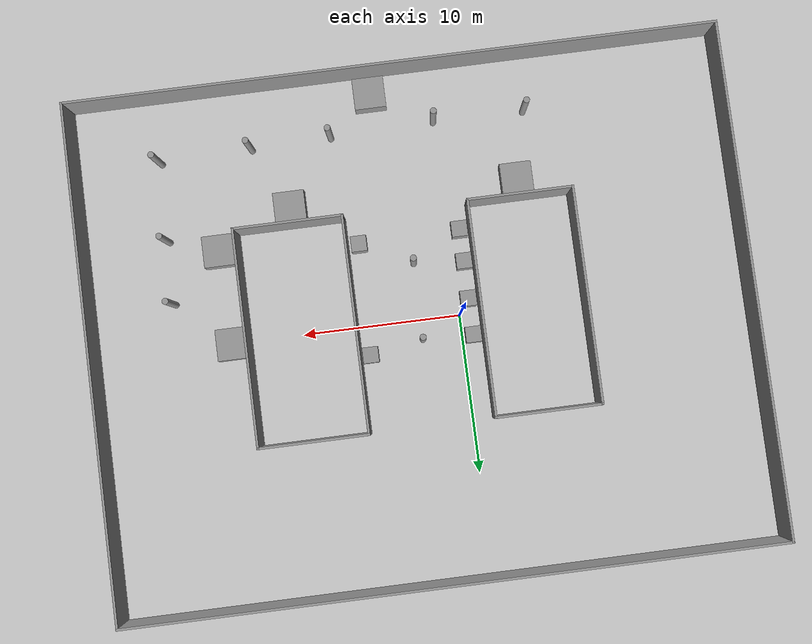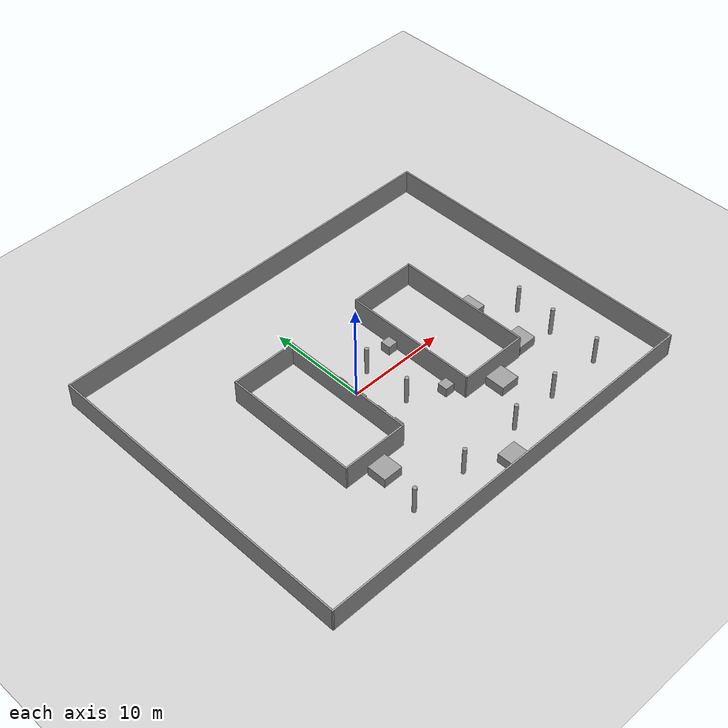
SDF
<sdf version="1.6">
 <world name="default">
  <model name="ground_plane">
   <static>1</static>
   <link name="link">
    <collision name="collision">
     <geometry><plane><normal>0 0 1</normal><size>100 100</size></plane></geometry>
     <surface><friction><ode><mu>100</mu><mu2>50</mu2></ode></friction></surface>
    </collision>
    <visual name="visual">
     <cast_shadows>0</cast_shadows>
     <geometry><plane><normal>0 0 1</normal><size>100 100</size></plane></geometry>
     <material>
      <script><uri>file://media/materials/scripts/gazebo.material</uri><name>Gazebo/Grey</name></script>
     </material>
    </visual>
   </link>
  </model>
  <model name="factoy">
   <pose>2.41999 0.117964 0 0 -0 0</pose>
   <link name="Wall_10">
    <collision name="Wall_10_Collision">
     <geometry><box><size>13.75 0.15 2.5</size></box></geometry>
     <pose>0 0 1.25 0 -0 0</pose>
    </collision>
    <visual name="Wall_10_Visual">
     <pose>0 0 1.25 0 -0 0</pose>
     <geometry><box><size>13.75 0.15 2.5</size></box></geometry>
     <material>
      <script><uri>file://media/materials/scripts/gazebo.material</uri><name>Gazebo/Grey</name></script>
      <ambient>1 1 1 1</ambient>
     </material>
     <meta><layer>0</layer></meta>
    </visual>
    <pose>-10.3431 -0.269014 0 0 -0 1.5708</pose>
   </link>
   <link name="Wall_12">
    <collision name="Wall_12_Collision">
     <geometry><box><size>6.75 0.15 2.5</size></box></geometry>
     <pose>0 0 1.25 0 -0 0</pose>
    </collision>
    <visual name="Wall_12_Visual">
     <pose>0 0 1.25 0 -0 0</pose>
     <geometry><box><size>6.75 0.15 2.5</size></box></geometry>
     <material>
      <script><uri>file://media/materials/scripts/gazebo.material</uri><name>Gazebo/Grey</name></script>
      <ambient>1 1 1 1</ambient>
     </material>
     <meta><layer>0</layer></meta>
    </visual>
    <pose>-7.04306 6.53099 0 0 -0 0</pose>
   </link>
   <link name="Wall_13">
    <collision name="Wall_13_Collision">
     <geometry><box><size>13.75 0.15 2.5</size></box></geometry>
     <pose>0 0 1.25 0 -0 0</pose>
    </collision>
    <visual name="Wall_13_Visual">
     <pose>0 0 1.25 0 -0 0</pose>
     <geometry><box><size>13.75 0.15 2.5</size></box></geometry>
     <material>
      <script><uri>file://media/materials/scripts/gazebo.material</uri><name>Gazebo/Grey</name></script>
      <ambient>1 1 1 1</ambient>
     </material>
     <meta><layer>0</layer></meta>
    </visual>
    <pose>-3.74306 -0.269014 0 0 -0 -1.5708</pose>
   </link>
   <link name="Wall_14">
    <collision name="Wall_14_Collision">
     <geometry><box><size>6.75 0.15 2.5</size></box></geometry>
     <pose>0 0 1.25 0 -0 0</pose>
    </collision>
    <visual name="Wall_14_Visual">
     <pose>0 0 1.25 0 -0 0</pose>
     <geometry><box><size>6.75 0.15 2.5</size></box></geometry>
     <material>
      <script><uri>file://media/materials/scripts/gazebo.material</uri><name>Gazebo/Grey</name></script>
      <ambient>1 1 1 1</ambient>
     </material>
     <meta><layer>0</layer></meta>
    </visual>
    <pose>-7.04306 -7.06901 0 0 -0 3.14159</pose>
   </link>
   <link name="Wall_16">
    <collision name="Wall_16_Collision">
     <geometry><box><size>7 0.15 2.5</size></box></geometry>
     <pose>0 0 1.25 0 -0 0</pose>
    </collision>
    <visual name="Wall_16_Visual">
     <pose>0 0 1.25 0 -0 0</pose>
     <geometry><box><size>7 0.15 2.5</size></box></geometry>
     <material>
      <script><uri>file://media/materials/scripts/gazebo.material</uri><name>Gazebo/Grey</name></script>
      <ambient>1 1 1 1</ambient>
     </material>
     <meta><layer>0</layer></meta>
    </visual>
    <pose>7.54301 -7.09389 0 0 -0 3.14159</pose>
   </link>
   <link name="Wall_17">
    <collision name="Wall_17_Collision">
     <geometry><box><size>13.7872 0.15 2.5</size></box></geometry>
     <pose>0 0 1.25 0 -0 0</pose>
    </collision>
    <visual name="Wall_17_Visual">
     <pose>0 0 1.25 0 -0 0</pose>
     <geometry><box><size>13.7872 0.15 2.5</size></box></geometry>
     <material>
      <script><uri>file://media/materials/scripts/gazebo.material</uri><name>Gazebo/Grey</name></script>
      <ambient>1 1 1 1</ambient>
     </material>
     <meta><layer>0</layer></meta>
    </visual>
    <pose>4.11801 -0.248686 0 0 -0 1.5708</pose>
   </link>
   <link name="Wall_18">
    <collision name="Wall_18_Collision">
     <geometry><box><size>7 0.15 2.5</size></box></geometry>
     <pose>0 0 1.25 0 -0 0</pose>
    </collision>
    <visual name="Wall_18_Visual">
     <pose>0 0 1.25 0 -0 0</pose>
     <geometry><box><size>7 0.15 2.5</size></box></geometry>
     <material>
      <script><uri>file://media/materials/scripts/gazebo.material</uri><name>Gazebo/Grey</name></script>
      <ambient>1 1 1 1</ambient>
     </material>
     <meta><layer>0</layer></meta>
    </visual>
    <pose>7.54301 6.56991 0 0 -0 0</pose>
   </link>
   <link name="Wall_2">
    <collision name="Wall_2_Collision">
     <geometry><box><size>41.5 0.15 2.5</size></box></geometry>
     <pose>0 0 1.25 0 -0 0</pose>
    </collision>
    <visual name="Wall_2_Visual">
     <pose>0 0 1.25 0 -0 0</pose>
     <geometry><box><size>41.5 0.15 2.5</size></box></geometry>
     <material>
      <script><uri>file://media/materials/scripts/gazebo.material</uri><name>Gazebo/Grey</name></script>
      <ambient>1 1 1 1</ambient>
     </material>
     <meta><layer>0</layer></meta>
    </visual>
    <pose>-0 16.3 0 0 -0 0</pose>
   </link>
   <link name="Wall_3">
    <collision name="Wall_3_Collision">
     <geometry><box><size>32.751 0.15 2.5</size></box></geometry>
     <pose>0 0 1.25 0 -0 0</pose>
    </collision>
    <visual name="Wall_3_Visual">
     <pose>0 0 1.25 0 -0 0</pose>
     <geometry><box><size>32.751 0.15 2.5</size></box></geometry>
     <material>
      <script><uri>file://media/materials/scripts/gazebo.material</uri><name>Gazebo/Grey</name></script>
      <ambient>1 1 1 1</ambient>
     </material>
     <meta><layer>0</layer></meta>
    </visual>
    <pose>20.675 -0 0 0 -0 -1.5708</pose>
   </link>
   <link name="Wall_4">
    <collision name="Wall_4_Collision">
     <geometry><box><size>41.5 0.15 2.5</size></box></geometry>
     <pose>0 0 1.25 0 -0 0</pose>
    </collision>
    <visual name="Wall_4_Visual">
     <pose>0 0 1.25 0 -0 0</pose>
     <geometry><box><size>41.5 0.15 2.5</size></box></geometry>
     <material>
      <script><uri>file://media/materials/scripts/gazebo.material</uri><name>Gazebo/Grey</name></script>
      <ambient>1 1 1 1</ambient>
     </material>
     <meta><layer>0</layer></meta>
    </visual>
    <pose>-0 -16.3 0 0 -0 3.14159</pose>
   </link>
   <link name="Wall_5">
    <collision name="Wall_5_Collision">
     <geometry><box><size>32.75 0.15 2.5</size></box></geometry>
     <pose>0 0 1.25 0 -0 0</pose>
    </collision>
    <visual name="Wall_5_Visual">
     <pose>0 0 1.25 0 -0 0</pose>
     <geometry><box><size>32.75 0.15 2.5</size></box></geometry>
     <material>
      <script><uri>file://media/materials/scripts/gazebo.material</uri><name>Gazebo/Grey</name></script>
      <ambient>1 1 1 1</ambient>
     </material>
     <meta><layer>0</layer></meta>
    </visual>
    <pose>-20.675 -0 0 0 -0 1.5708</pose>
   </link>
   <link name="Wall_8">
    <collision name="Wall_8_Collision">
     <geometry><box><size>13.7872 0.15 2.5</size></box></geometry>
     <pose>0 0 1.25 0 -0 0</pose>
    </collision>
    <visual name="Wall_8_Visual">
     <pose>0 0 1.25 0 -0 0</pose>
     <geometry><box><size>13.7872 0.15 2.5</size></box></geometry>
     <material>
      <script><uri>file://media/materials/scripts/gazebo.material</uri><name>Gazebo/Grey</name></script>
      <ambient>1 1 1 1</ambient>
     </material>
     <meta><layer>0</layer></meta>
    </visual>
    <pose>10.968 -0.248686 0 0 -0 -1.5708</pose>
   </link>
   <static>1</static>
  </model>
  <model name="unit_box_clone_0_clone_2">
   <pose>-0.688879 1.33045 0.5 0 -0 0</pose>
   <link name="link">
    <inertial>
     <mass>1</mass>
     <inertia>
      <ixx>0.166667</ixx>
      <ixy>0</ixy>
      <ixz>0</ixz>
      <iyy>0.166667</iyy>
      <iyz>0</iyz>
      <izz>0.166667</izz>
     </inertia>
    </inertial>
    <collision name="collision"><geometry><box><size>1 1 1</size></box></geometry></collision>
    <visual name="visual">
     <geometry><box><size>1 1 1</size></box></geometry>
     <material>
      <script><name>Gazebo/Grey</name><uri>file://media/materials/scripts/gazebo.material</uri></script>
     </material>
    </visual>
   </link>
  </model>
  <model name="unit_box_clone_0_clone_3">
   <pose>-0.658954 -0.97422 0.5 0 -0 0</pose>
   <link name="link">
    <inertial>
     <mass>1</mass>
     <inertia>
      <ixx>0.166667</ixx>
      <ixy>0</ixy>
      <ixz>0</ixz>
      <iyy>0.166667</iyy>
      <iyz>0</iyz>
      <izz>0.166667</izz>
     </inertia>
    </inertial>
    <collision name="collision"><geometry><box><size>1 1 1</size></box></geometry></collision>
    <visual name="visual">
     <geometry><box><size>1 1 1</size></box></geometry>
     <material>
      <script><name>Gazebo/Grey</name><uri>file://media/materials/scripts/gazebo.material</uri></script>
     </material>
    </visual>
   </link>
  </model>
  <model name="unit_box_clone_0_clone_4">
   <pose>-0.697046 -3.37448 0.5 0 -0 0</pose>
   <link name="link">
    <inertial>
     <mass>1</mass>
     <inertia>
      <ixx>0.166667</ixx>
      <ixy>0</ixy>
      <ixz>0</ixz>
      <iyy>0.166667</iyy>
      <iyz>0</iyz>
      <izz>0.166667</izz>
     </inertia>
    </inertial>
    <collision name="collision"><geometry><box><size>1 1 1</size></box></geometry></collision>
    <visual name="visual">
     <geometry><box><size>1 1 1</size></box></geometry>
     <material>
      <script><name>Gazebo/Grey</name><uri>file://media/materials/scripts/gazebo.material</uri></script>
     </material>
    </visual>
   </link>
  </model>
  <model name="unit_box_clone_0_clone_5">
   <pose>-0.656218 -5.43788 0.5 0 -0 0</pose>
   <link name="link">
    <inertial>
     <mass>1</mass>
     <inertia>
      <ixx>0.166667</ixx>
      <ixy>0</ixy>
      <ixz>0</ixz>
      <iyy>0.166667</iyy>
      <iyz>0</iyz>
      <izz>0.166667</izz>
     </inertia>
    </inertial>
    <collision name="collision"><geometry><box><size>1 1 1</size></box></geometry></collision>
    <visual name="visual">
     <geometry><box><size>1 1 1</size></box></geometry>
     <material>
      <script><name>Gazebo/Grey</name><uri>file://media/materials/scripts/gazebo.material</uri></script>
     </material>
    </visual>
   </link>
  </model>
  <model name="box3_clone_12_clone_1">
   <link name="link_0">
    <inertial>
     <mass>200</mass>
     <inertia><ixx>83.3333</ixx><ixy>0</ixy><ixz>0</ixz><iyy>83.3333</iyy><iyz>0</iyz><izz>133.333</izz></inertia>
     <pose>0 0 1 0 -0 0</pose>
    </inertial>
    <visual name="visual">
     <geometry><box><size>2 2 1</size></box></geometry>
     <material>
      <lighting>1</lighting>
      <script><uri>file://media/materials/scripts/gazebo.material</uri><name>Gazebo/Grey</name></script>
      <shader type="pixel"><normal_map>__default__</normal_map></shader>
      <ambient>0.3 0.3 0.3 1</ambient>
      <diffuse>0.7 0.7 0.7 1</diffuse>
      <specular>0.01 0.01 0.01 1</specular>
      <emissive>0 0 0 1</emissive>
     </material>
    </visual>
    <collision name="collision">
     <geometry><box><size>2 2 1</size></box></geometry>
     <surface>
      <friction>
       <ode><mu>1</mu><mu2>1</mu2><fdir1>0 0 0</fdir1><slip1>0</slip1><slip2>0</slip2></ode>
       <torsional>
        <coefficient>1</coefficient>
        <patch_radius>0</patch_radius>
        <surface_radius>0</surface_radius>
        <use_patch_radius>1</use_patch_radius>
        <ode><slip>0</slip></ode>
       </torsional>
      </friction>
      <bounce><restitution_coefficient>0</restitution_coefficient><threshold>1e+06</threshold></bounce>
      <contact>
       <collide_without_contact>0</collide_without_contact>
       <collide_without_contact_bitmask>1</collide_without_contact_bitmask>
       <collide_bitmask>1</collide_bitmask>
       <ode>
        <soft_cfm>0</soft_cfm>
        <soft_erp>0.2</soft_erp>
        <kp>1e+13</kp>
        <kd>1</kd>
        <max_vel>0.01</max_vel>
        <min_depth>0</min_depth>
       </ode>
       <bullet>
        <split_impulse>1</split_impulse>
        <split_impulse_penetration_threshold>-0.01</split_impulse_penetration_threshold>
        <soft_cfm>0</soft_cfm>
        <soft_erp>0.2</soft_erp>
        <kp>1e+13</kp>
        <kd>1</kd>
       </bullet>
      </contact>
     </surface>
    </collision>
   </link>
   <static>0</static>
   <pose>14.4652 0.009063 0.5 0 0 -0.002067</pose>
  </model>
  <model name="box3_clone_12_clone_2">
   <link name="link_0">
    <inertial>
     <mass>200</mass>
     <inertia><ixx>83.3333</ixx><ixy>0</ixy><ixz>0</ixz><iyy>83.3333</iyy><iyz>0</iyz><izz>133.333</izz></inertia>
     <pose>0 0 1 0 -0 0</pose>
    </inertial>
    <visual name="visual">
     <geometry><box><size>2 2 1</size></box></geometry>
     <material>
      <lighting>1</lighting>
      <script><uri>file://media/materials/scripts/gazebo.material</uri><name>Gazebo/Grey</name></script>
      <shader type="pixel"><normal_map>__default__</normal_map></shader>
      <ambient>0.3 0.3 0.3 1</ambient>
      <diffuse>0.7 0.7 0.7 1</diffuse>
      <specular>0.01 0.01 0.01 1</specular>
      <emissive>0 0 0 1</emissive>
     </material>
    </visual>
    <collision name="collision">
     <geometry><box><size>2 2 1</size></box></geometry>
     <surface>
      <friction>
       <ode><mu>1</mu><mu2>1</mu2><fdir1>0 0 0</fdir1><slip1>0</slip1><slip2>0</slip2></ode>
       <torsional>
        <coefficient>1</coefficient>
        <patch_radius>0</patch_radius>
        <surface_radius>0</surface_radius>
        <use_patch_radius>1</use_patch_radius>
        <ode><slip>0</slip></ode>
       </torsional>
      </friction>
      <bounce><restitution_coefficient>0</restitution_coefficient><threshold>1e+06</threshold></bounce>
      <contact>
       <collide_without_contact>0</collide_without_contact>
       <collide_without_contact_bitmask>1</collide_without_contact_bitmask>
       <collide_bitmask>1</collide_bitmask>
       <ode>
        <soft_cfm>0</soft_cfm>
        <soft_erp>0.2</soft_erp>
        <kp>1e+13</kp>
        <kd>1</kd>
        <max_vel>0.01</max_vel>
        <min_depth>0</min_depth>
       </ode>
       <bullet>
        <split_impulse>1</split_impulse>
        <split_impulse_penetration_threshold>-0.01</split_impulse_penetration_threshold>
        <soft_cfm>0</soft_cfm>
        <soft_erp>0.2</soft_erp>
        <kp>1e+13</kp>
        <kd>1</kd>
       </bullet>
      </contact>
     </surface>
    </collision>
   </link>
   <static>0</static>
   <pose>14.6475 -5.96314 0.5 0 -0 0.000104</pose>
  </model>
  <model name="unit_box_clone_2_clone_14">
   <pose>5.90384 1.80734 0.5 0 -0 0</pose>
   <link name="link">
    <inertial>
     <mass>1</mass>
     <inertia>
      <ixx>0.166667</ixx>
      <ixy>0</ixy>
      <ixz>0</ixz>
      <iyy>0.166667</iyy>
      <iyz>0</iyz>
      <izz>0.166667</izz>
     </inertia>
    </inertial>
    <collision name="collision"><geometry><box><size>1 1 1</size></box></geometry></collision>
    <visual name="visual">
     <geometry><box><size>1 1 1</size></box></geometry>
     <material>
      <script><name>Gazebo/Grey</name><uri>file://media/materials/scripts/gazebo.material</uri></script>
     </material>
    </visual>
   </link>
  </model>
  <model name="unit_box_clone_2_clone_15">
   <pose>5.78307 -5.29303 0.5 0 -0 0</pose>
   <link name="link">
    <inertial>
     <mass>1</mass>
     <inertia>
      <ixx>0.166667</ixx>
      <ixy>0</ixy>
      <ixz>0</ixz>
      <iyy>0.166667</iyy>
      <iyz>0</iyz>
      <izz>0.166667</izz>
     </inertia>
    </inertial>
    <collision name="collision"><geometry><box><size>1 1 1</size></box></geometry></collision>
    <visual name="visual">
     <geometry><box><size>1 1 1</size></box></geometry>
     <material>
      <script><name>Gazebo/Grey</name><uri>file://media/materials/scripts/gazebo.material</uri></script>
     </material>
    </visual>
   </link>
  </model>
  <model name="box3_clone_12_clone_2_clone">
   <link name="link_0">
    <inertial>
     <mass>200</mass>
     <inertia><ixx>83.3333</ixx><ixy>0</ixy><ixz>0</ixz><iyy>83.3333</iyy><iyz>0</iyz><izz>133.333</izz></inertia>
     <pose>0 0 1 0 -0 0</pose>
    </inertial>
    <visual name="visual">
     <geometry><box><size>2 2 1</size></box></geometry>
     <material>
      <lighting>1</lighting>
      <script><uri>file://media/materials/scripts/gazebo.material</uri><name>Gazebo/Grey</name></script>
      <shader type="pixel"><normal_map>__default__</normal_map></shader>
      <ambient>0.3 0.3 0.3 1</ambient>
      <diffuse>0.7 0.7 0.7 1</diffuse>
      <specular>0.01 0.01 0.01 1</specular>
      <emissive>0 0 0 1</emissive>
     </material>
    </visual>
    <collision name="collision">
     <geometry><box><size>2 2 1</size></box></geometry>
     <surface>
      <friction>
       <ode><mu>1</mu><mu2>1</mu2><fdir1>0 0 0</fdir1><slip1>0</slip1><slip2>0</slip2></ode>
       <torsional>
        <coefficient>1</coefficient>
        <patch_radius>0</patch_radius>
        <surface_radius>0</surface_radius>
        <use_patch_radius>1</use_patch_radius>
        <ode><slip>0</slip></ode>
       </torsional>
      </friction>
      <bounce><restitution_coefficient>0</restitution_coefficient><threshold>1e+06</threshold></bounce>
      <contact>
       <collide_without_contact>0</collide_without_contact>
       <collide_without_contact_bitmask>1</collide_without_contact_bitmask>
       <collide_bitmask>1</collide_bitmask>
       <ode>
        <soft_cfm>0</soft_cfm>
        <soft_erp>0.2</soft_erp>
        <kp>1e+13</kp>
        <kd>1</kd>
        <max_vel>0.01</max_vel>
        <min_depth>0</min_depth>
       </ode>
       <bullet>
        <split_impulse>1</split_impulse>
        <split_impulse_penetration_threshold>-0.01</split_impulse_penetration_threshold>
        <soft_cfm>0</soft_cfm>
        <soft_erp>0.2</soft_erp>
        <kp>1e+13</kp>
        <kd>1</kd>
       </bullet>
      </contact>
     </surface>
    </collision>
   </link>
   <static>0</static>
   <pose>9.85011 -8.17374 0.499989 -0 1e-06 -0.000139</pose>
  </model>
  <model name="box3_clone_12_clone_2_clone_0">
   <link name="link_0">
    <inertial>
     <mass>200</mass>
     <inertia><ixx>83.3333</ixx><ixy>0</ixy><ixz>0</ixz><iyy>83.3333</iyy><iyz>0</iyz><izz>133.333</izz></inertia>
     <pose>0 0 1 0 -0 0</pose>
    </inertial>
    <visual name="visual">
     <geometry><box><size>2 2 1</size></box></geometry>
     <material>
      <lighting>1</lighting>
      <script><uri>file://media/materials/scripts/gazebo.material</uri><name>Gazebo/Grey</name></script>
      <shader type="pixel"><normal_map>__default__</normal_map></shader>
      <ambient>0.3 0.3 0.3 1</ambient>
      <diffuse>0.7 0.7 0.7 1</diffuse>
      <specular>0.01 0.01 0.01 1</specular>
      <emissive>0 0 0 1</emissive>
     </material>
    </visual>
    <collision name="collision">
     <geometry><box><size>2 2 1</size></box></geometry>
     <surface>
      <friction>
       <ode><mu>1</mu><mu2>1</mu2><fdir1>0 0 0</fdir1><slip1>0</slip1><slip2>0</slip2></ode>
       <torsional>
        <coefficient>1</coefficient>
        <patch_radius>0</patch_radius>
        <surface_radius>0</surface_radius>
        <use_patch_radius>1</use_patch_radius>
        <ode><slip>0</slip></ode>
       </torsional>
      </friction>
      <bounce><restitution_coefficient>0</restitution_coefficient><threshold>1e+06</threshold></bounce>
      <contact>
       <collide_without_contact>0</collide_without_contact>
       <collide_without_contact_bitmask>1</collide_without_contact_bitmask>
       <collide_bitmask>1</collide_bitmask>
       <ode>
        <soft_cfm>0</soft_cfm>
        <soft_erp>0.2</soft_erp>
        <kp>1e+13</kp>
        <kd>1</kd>
        <max_vel>0.01</max_vel>
        <min_depth>0</min_depth>
       </ode>
       <bullet>
        <split_impulse>1</split_impulse>
        <split_impulse_penetration_threshold>-0.01</split_impulse_penetration_threshold>
        <soft_cfm>0</soft_cfm>
        <soft_erp>0.2</soft_erp>
        <kp>1e+13</kp>
        <kd>1</kd>
       </bullet>
      </contact>
     </surface>
    </collision>
   </link>
   <static>0</static>
   <pose>-4.70562 -8.19884 0.5 0 0 -7.3e-05</pose>
  </model>
  <model name="pole_clone_10">
   <link name="link_0">
    <inertial>
     <mass>1</mass>
     <inertia><ixx>0.145833</ixx><ixy>0</ixy><ixz>0</ixz><iyy>0.145833</iyy><iyz>0</iyz><izz>0.125</izz></inertia>
    </inertial>
    <visual name="visual">
     <pose>0 0 1 0 -0 0</pose>
     <geometry><cylinder><radius>0.2</radius><length>3</length></cylinder></geometry>
     <material>
      <lighting>1</lighting>
      <script><uri>file://media/materials/scripts/gazebo.material</uri><name>Gazebo/Grey</name></script>
      <shader type="pixel"><normal_map>__default__</normal_map></shader>
      <ambient>0.3 0.3 0.3 1</ambient>
      <diffuse>0.7 0.7 0.7 1</diffuse>
      <specular>0.01 0.01 0.01 1</specular>
      <emissive>0 0 0 1</emissive>
     </material>
    </visual>
    <collision name="collision">
     <pose>0 0 1 0 -0 0</pose>
     <geometry><cylinder><radius>0.2</radius><length>3</length></cylinder></geometry>
     <surface>
      <friction>
       <ode><mu>1</mu><mu2>1</mu2><fdir1>0 0 0</fdir1><slip1>0</slip1><slip2>0</slip2></ode>
       <torsional>
        <coefficient>1</coefficient>
        <patch_radius>0</patch_radius>
        <surface_radius>0</surface_radius>
        <use_patch_radius>1</use_patch_radius>
        <ode><slip>0</slip></ode>
       </torsional>
      </friction>
      <bounce><restitution_coefficient>0</restitution_coefficient><threshold>1e+06</threshold></bounce>
      <contact>
       <collide_without_contact>0</collide_without_contact>
       <collide_without_contact_bitmask>1</collide_without_contact_bitmask>
       <collide_bitmask>1</collide_bitmask>
       <ode>
        <soft_cfm>0</soft_cfm>
        <soft_erp>0.2</soft_erp>
        <kp>1e+13</kp>
        <kd>1</kd>
        <max_vel>0.01</max_vel>
        <min_depth>0</min_depth>
       </ode>
       <bullet>
        <split_impulse>1</split_impulse>
        <split_impulse_penetration_threshold>-0.01</split_impulse_penetration_threshold>
        <soft_cfm>0</soft_cfm>
        <soft_erp>0.2</soft_erp>
        <kp>1e+13</kp>
        <kd>1</kd>
       </bullet>
      </contact>
     </surface>
    </collision>
   </link>
   <static>0</static>
   <pose>-5.73274 -12.5768 0.5 0 -0 2e-06</pose>
  </model>
  <model name="pole_clone_11">
   <link name="link_0">
    <inertial>
     <mass>1</mass>
     <inertia><ixx>0.145833</ixx><ixy>0</ixy><ixz>0</ixz><iyy>0.145833</iyy><iyz>0</iyz><izz>0.125</izz></inertia>
    </inertial>
    <visual name="visual">
     <pose>0 0 1 0 -0 0</pose>
     <geometry><cylinder><radius>0.2</radius><length>3</length></cylinder></geometry>
     <material>
      <lighting>1</lighting>
      <script><uri>file://media/materials/scripts/gazebo.material</uri><name>Gazebo/Grey</name></script>
      <shader type="pixel"><normal_map>__default__</normal_map></shader>
      <ambient>0.3 0.3 0.3 1</ambient>
      <diffuse>0.7 0.7 0.7 1</diffuse>
      <specular>0.01 0.01 0.01 1</specular>
      <emissive>0 0 0 1</emissive>
     </material>
    </visual>
    <collision name="collision">
     <pose>0 0 1 0 -0 0</pose>
     <geometry><cylinder><radius>0.2</radius><length>3</length></cylinder></geometry>
     <surface>
      <friction>
       <ode><mu>1</mu><mu2>1</mu2><fdir1>0 0 0</fdir1><slip1>0</slip1><slip2>0</slip2></ode>
       <torsional>
        <coefficient>1</coefficient>
        <patch_radius>0</patch_radius>
        <surface_radius>0</surface_radius>
        <use_patch_radius>1</use_patch_radius>
        <ode><slip>0</slip></ode>
       </torsional>
      </friction>
      <bounce><restitution_coefficient>0</restitution_coefficient><threshold>1e+06</threshold></bounce>
      <contact>
       <collide_without_contact>0</collide_without_contact>
       <collide_without_contact_bitmask>1</collide_without_contact_bitmask>
       <collide_bitmask>1</collide_bitmask>
       <ode>
        <soft_cfm>0</soft_cfm>
        <soft_erp>0.2</soft_erp>
        <kp>1e+13</kp>
        <kd>1</kd>
        <max_vel>0.01</max_vel>
        <min_depth>0</min_depth>
       </ode>
       <bullet>
        <split_impulse>1</split_impulse>
        <split_impulse_penetration_threshold>-0.01</split_impulse_penetration_threshold>
        <soft_cfm>0</soft_cfm>
        <soft_erp>0.2</soft_erp>
        <kp>1e+13</kp>
        <kd>1</kd>
       </bullet>
      </contact>
     </surface>
    </collision>
   </link>
   <static>0</static>
   <pose>0.092404 -12.6306 0.5 0 -0 2e-06</pose>
  </model>
  <model name="pole_clone_12">
   <link name="link_0">
    <inertial>
     <mass>1</mass>
     <inertia><ixx>0.145833</ixx><ixy>0</ixy><ixz>0</ixz><iyy>0.145833</iyy><iyz>0</iyz><izz>0.125</izz></inertia>
    </inertial>
    <visual name="visual">
     <pose>0 0 1 0 -0 0</pose>
     <geometry><cylinder><radius>0.2</radius><length>3</length></cylinder></geometry>
     <material>
      <lighting>1</lighting>
      <script><uri>file://media/materials/scripts/gazebo.material</uri><name>Gazebo/Grey</name></script>
      <shader type="pixel"><normal_map>__default__</normal_map></shader>
      <ambient>0.3 0.3 0.3 1</ambient>
      <diffuse>0.7 0.7 0.7 1</diffuse>
      <specular>0.01 0.01 0.01 1</specular>
      <emissive>0 0 0 1</emissive>
     </material>
    </visual>
    <collision name="collision">
     <pose>0 0 1 0 -0 0</pose>
     <geometry><cylinder><radius>0.2</radius><length>3</length></cylinder></geometry>
     <surface>
      <friction>
       <ode><mu>1</mu><mu2>1</mu2><fdir1>0 0 0</fdir1><slip1>0</slip1><slip2>0</slip2></ode>
       <torsional>
        <coefficient>1</coefficient>
        <patch_radius>0</patch_radius>
        <surface_radius>0</surface_radius>
        <use_patch_radius>1</use_patch_radius>
        <ode><slip>0</slip></ode>
       </torsional>
      </friction>
      <bounce><restitution_coefficient>0</restitution_coefficient><threshold>1e+06</threshold></bounce>
      <contact>
       <collide_without_contact>0</collide_without_contact>
       <collide_without_contact_bitmask>1</collide_without_contact_bitmask>
       <collide_bitmask>1</collide_bitmask>
       <ode>
        <soft_cfm>0</soft_cfm>
        <soft_erp>0.2</soft_erp>
        <kp>1e+13</kp>
        <kd>1</kd>
        <max_vel>0.01</max_vel>
        <min_depth>0</min_depth>
       </ode>
       <bullet>
        <split_impulse>1</split_impulse>
        <split_impulse_penetration_threshold>-0.01</split_impulse_penetration_threshold>
        <soft_cfm>0</soft_cfm>
        <soft_erp>0.2</soft_erp>
        <kp>1e+13</kp>
        <kd>1</kd>
       </bullet>
      </contact>
     </surface>
    </collision>
   </link>
   <static>0</static>
   <pose>6.75162 -12.4053 0.5 0 -0 2e-06</pose>
  </model>
  <model name="pole_clone_13">
   <link name="link_0">
    <inertial>
     <mass>1</mass>
     <inertia><ixx>0.145833</ixx><ixy>0</ixy><ixz>0</ixz><iyy>0.145833</iyy><iyz>0</iyz><izz>0.125</izz></inertia>
    </inertial>
    <visual name="visual">
     <pose>0 0 1 0 -0 0</pose>
     <geometry><cylinder><radius>0.2</radius><length>3</length></cylinder></geometry>
     <material>
      <lighting>1</lighting>
      <script><uri>file://media/materials/scripts/gazebo.material</uri><name>Gazebo/Grey</name></script>
      <shader type="pixel"><normal_map>__default__</normal_map></shader>
      <ambient>0.3 0.3 0.3 1</ambient>
      <diffuse>0.7 0.7 0.7 1</diffuse>
      <specular>0.01 0.01 0.01 1</specular>
      <emissive>0 0 0 1</emissive>
     </material>
    </visual>
    <collision name="collision">
     <pose>0 0 1 0 -0 0</pose>
     <geometry><cylinder><radius>0.2</radius><length>3</length></cylinder></geometry>
     <surface>
      <friction>
       <ode><mu>1</mu><mu2>1</mu2><fdir1>0 0 0</fdir1><slip1>0</slip1><slip2>0</slip2></ode>
       <torsional>
        <coefficient>1</coefficient>
        <patch_radius>0</patch_radius>
        <surface_radius>0</surface_radius>
        <use_patch_radius>1</use_patch_radius>
        <ode><slip>0</slip></ode>
       </torsional>
      </friction>
      <bounce><restitution_coefficient>0</restitution_coefficient><threshold>1e+06</threshold></bounce>
      <contact>
       <collide_without_contact>0</collide_without_contact>
       <collide_without_contact_bitmask>1</collide_without_contact_bitmask>
       <collide_bitmask>1</collide_bitmask>
       <ode>
        <soft_cfm>0</soft_cfm>
        <soft_erp>0.2</soft_erp>
        <kp>1e+13</kp>
        <kd>1</kd>
        <max_vel>0.01</max_vel>
        <min_depth>0</min_depth>
       </ode>
       <bullet>
        <split_impulse>1</split_impulse>
        <split_impulse_penetration_threshold>-0.01</split_impulse_penetration_threshold>
        <soft_cfm>0</soft_cfm>
        <soft_erp>0.2</soft_erp>
        <kp>1e+13</kp>
        <kd>1</kd>
       </bullet>
      </contact>
     </surface>
    </collision>
   </link>
   <static>0</static>
   <pose>11.8773 -12.2635 0.5 0 -0 2e-06</pose>
  </model>
  <model name="pole_clone_14">
   <link name="link_0">
    <inertial>
     <mass>1</mass>
     <inertia><ixx>0.145833</ixx><ixy>0</ixy><ixz>0</ixz><iyy>0.145833</iyy><iyz>0</iyz><izz>0.125</izz></inertia>
    </inertial>
    <visual name="visual">
     <pose>0 0 1 0 -0 0</pose>
     <geometry><cylinder><radius>0.2</radius><length>3</length></cylinder></geometry>
     <material>
      <lighting>1</lighting>
      <script><uri>file://media/materials/scripts/gazebo.material</uri><name>Gazebo/Grey</name></script>
      <shader type="pixel"><normal_map>__default__</normal_map></shader>
      <ambient>0.3 0.3 0.3 1</ambient>
      <diffuse>0.7 0.7 0.7 1</diffuse>
      <specular>0.01 0.01 0.01 1</specular>
      <emissive>0 0 0 1</emissive>
     </material>
    </visual>
    <collision name="collision">
     <pose>0 0 1 0 -0 0</pose>
     <geometry><cylinder><radius>0.2</radius><length>3</length></cylinder></geometry>
     <surface>
      <friction>
       <ode><mu>1</mu><mu2>1</mu2><fdir1>0 0 0</fdir1><slip1>0</slip1><slip2>0</slip2></ode>
       <torsional>
        <coefficient>1</coefficient>
        <patch_radius>0</patch_radius>
        <surface_radius>0</surface_radius>
        <use_patch_radius>1</use_patch_radius>
        <ode><slip>0</slip></ode>
       </torsional>
      </friction>
      <bounce><restitution_coefficient>0</restitution_coefficient><threshold>1e+06</threshold></bounce>
      <contact>
       <collide_without_contact>0</collide_without_contact>
       <collide_without_contact_bitmask>1</collide_without_contact_bitmask>
       <collide_bitmask>1</collide_bitmask>
       <ode>
        <soft_cfm>0</soft_cfm>
        <soft_erp>0.2</soft_erp>
        <kp>1e+13</kp>
        <kd>1</kd>
        <max_vel>0.01</max_vel>
        <min_depth>0</min_depth>
       </ode>
       <bullet>
        <split_impulse>1</split_impulse>
        <split_impulse_penetration_threshold>-0.01</split_impulse_penetration_threshold>
        <soft_cfm>0</soft_cfm>
        <soft_erp>0.2</soft_erp>
        <kp>1e+13</kp>
        <kd>1</kd>
       </bullet>
      </contact>
     </surface>
    </collision>
   </link>
   <static>0</static>
   <pose>17.7624 -12.1006 0.5 0 -0 2e-06</pose>
  </model>
  <model name="pole_clone_15">
   <link name="link_0">
    <inertial>
     <mass>1</mass>
     <inertia><ixx>0.145833</ixx><ixy>0</ixy><ixz>0</ixz><iyy>0.145833</iyy><iyz>0</iyz><izz>0.125</izz></inertia>
    </inertial>
    <visual name="visual">
     <pose>0 0 1 0 -0 0</pose>
     <geometry><cylinder><radius>0.2</radius><length>3</length></cylinder></geometry>
     <material>
      <lighting>1</lighting>
      <script><uri>file://media/materials/scripts/gazebo.material</uri><name>Gazebo/Grey</name></script>
      <shader type="pixel"><normal_map>__default__</normal_map></shader>
      <ambient>0.3 0.3 0.3 1</ambient>
      <diffuse>0.7 0.7 0.7 1</diffuse>
      <specular>0.01 0.01 0.01 1</specular>
      <emissive>0 0 0 1</emissive>
     </material>
    </visual>
    <collision name="collision">
     <pose>0 0 1 0 -0 0</pose>
     <geometry><cylinder><radius>0.2</radius><length>3</length></cylinder></geometry>
     <surface>
      <friction>
       <ode><mu>1</mu><mu2>1</mu2><fdir1>0 0 0</fdir1><slip1>0</slip1><slip2>0</slip2></ode>
       <torsional>
        <coefficient>1</coefficient>
        <patch_radius>0</patch_radius>
        <surface_radius>0</surface_radius>
        <use_patch_radius>1</use_patch_radius>
        <ode><slip>0</slip></ode>
       </torsional>
      </friction>
      <bounce><restitution_coefficient>0</restitution_coefficient><threshold>1e+06</threshold></bounce>
      <contact>
       <collide_without_contact>0</collide_without_contact>
       <collide_without_contact_bitmask>1</collide_without_contact_bitmask>
       <collide_bitmask>1</collide_bitmask>
       <ode>
        <soft_cfm>0</soft_cfm>
        <soft_erp>0.2</soft_erp>
        <kp>1e+13</kp>
        <kd>1</kd>
        <max_vel>0.01</max_vel>
        <min_depth>0</min_depth>
       </ode>
       <bullet>
        <split_impulse>1</split_impulse>
        <split_impulse_penetration_threshold>-0.01</split_impulse_penetration_threshold>
        <soft_cfm>0</soft_cfm>
        <soft_erp>0.2</soft_erp>
        <kp>1e+13</kp>
        <kd>1</kd>
       </bullet>
      </contact>
     </surface>
    </collision>
   </link>
   <static>0</static>
   <pose>17.825 -7.00238 0.5 0 -0 2e-06</pose>
  </model>
  <model name="pole_clone_16">
   <link name="link_0">
    <inertial>
     <mass>1</mass>
     <inertia><ixx>0.145833</ixx><ixy>0</ixy><ixz>0</ixz><iyy>0.145833</iyy><iyz>0</iyz><izz>0.125</izz></inertia>
    </inertial>
    <visual name="visual">
     <pose>0 0 1 0 -0 0</pose>
     <geometry><cylinder><radius>0.2</radius><length>3</length></cylinder></geometry>
     <material>
      <lighting>1</lighting>
      <script><uri>file://media/materials/scripts/gazebo.material</uri><name>Gazebo/Grey</name></script>
      <shader type="pixel"><normal_map>__default__</normal_map></shader>
      <ambient>0.3 0.3 0.3 1</ambient>
      <diffuse>0.7 0.7 0.7 1</diffuse>
      <specular>0.01 0.01 0.01 1</specular>
      <emissive>0 0 0 1</emissive>
     </material>
    </visual>
    <collision name="collision">
     <pose>0 0 1 0 -0 0</pose>
     <geometry><cylinder><radius>0.2</radius><length>3</length></cylinder></geometry>
     <surface>
      <friction>
       <ode><mu>1</mu><mu2>1</mu2><fdir1>0 0 0</fdir1><slip1>0</slip1><slip2>0</slip2></ode>
       <torsional>
        <coefficient>1</coefficient>
        <patch_radius>0</patch_radius>
        <surface_radius>0</surface_radius>
        <use_patch_radius>1</use_patch_radius>
        <ode><slip>0</slip></ode>
       </torsional>
      </friction>
      <bounce><restitution_coefficient>0</restitution_coefficient><threshold>1e+06</threshold></bounce>
      <contact>
       <collide_without_contact>0</collide_without_contact>
       <collide_without_contact_bitmask>1</collide_without_contact_bitmask>
       <collide_bitmask>1</collide_bitmask>
       <ode>
        <soft_cfm>0</soft_cfm>
        <soft_erp>0.2</soft_erp>
        <kp>1e+13</kp>
        <kd>1</kd>
        <max_vel>0.01</max_vel>
        <min_depth>0</min_depth>
       </ode>
       <bullet>
        <split_impulse>1</split_impulse>
        <split_impulse_penetration_threshold>-0.01</split_impulse_penetration_threshold>
        <soft_cfm>0</soft_cfm>
        <soft_erp>0.2</soft_erp>
        <kp>1e+13</kp>
        <kd>1</kd>
       </bullet>
      </contact>
     </surface>
    </collision>
   </link>
   <static>0</static>
   <pose>17.887 -2.96249 0.5 0 -0 2e-06</pose>
  </model>
  <model name="pole_clone_19">
   <link name="link_0">
    <inertial>
     <mass>1</mass>
     <inertia><ixx>0.145833</ixx><ixy>0</ixy><ixz>0</ixz><iyy>0.145833</iyy><iyz>0</iyz><izz>0.125</izz></inertia>
    </inertial>
    <visual name="visual">
     <pose>0 0 1 0 -0 0</pose>
     <geometry><cylinder><radius>0.2</radius><length>3</length></cylinder></geometry>
     <material>
      <lighting>1</lighting>
      <script><uri>file://media/materials/scripts/gazebo.material</uri><name>Gazebo/Grey</name></script>
      <shader type="pixel"><normal_map>__default__</normal_map></shader>
      <ambient>0.3 0.3 0.3 1</ambient>
      <diffuse>0.7 0.7 0.7 1</diffuse>
      <specular>0.01 0.01 0.01 1</specular>
      <emissive>0 0 0 1</emissive>
     </material>
    </visual>
    <collision name="collision">
     <pose>0 0 1 0 -0 0</pose>
     <geometry><cylinder><radius>0.2</radius><length>3</length></cylinder></geometry>
     <surface>
      <friction>
       <ode><mu>1</mu><mu2>1</mu2><fdir1>0 0 0</fdir1><slip1>0</slip1><slip2>0</slip2></ode>
       <torsional>
        <coefficient>1</coefficient>
        <patch_radius>0</patch_radius>
        <surface_radius>0</surface_radius>
        <use_patch_radius>1</use_patch_radius>
        <ode><slip>0</slip></ode>
       </torsional>
      </friction>
      <bounce><restitution_coefficient>0</restitution_coefficient><threshold>1e+06</threshold></bounce>
      <contact>
       <collide_without_contact>0</collide_without_contact>
       <collide_without_contact_bitmask>1</collide_without_contact_bitmask>
       <collide_bitmask>1</collide_bitmask>
       <ode>
        <soft_cfm>0</soft_cfm>
        <soft_erp>0.2</soft_erp>
        <kp>1e+13</kp>
        <kd>1</kd>
        <max_vel>0.01</max_vel>
        <min_depth>0</min_depth>
       </ode>
       <bullet>
        <split_impulse>1</split_impulse>
        <split_impulse_penetration_threshold>-0.01</split_impulse_penetration_threshold>
        <soft_cfm>0</soft_cfm>
        <soft_erp>0.2</soft_erp>
        <kp>1e+13</kp>
        <kd>1</kd>
       </bullet>
      </contact>
     </surface>
    </collision>
   </link>
   <static>0</static>
   <pose>2.47895 -3.68819 0.5 0 -0 2e-06</pose>
  </model>
  <model name="pole_clone_20">
   <link name="link_0">
    <inertial>
     <mass>1</mass>
     <inertia><ixx>0.145833</ixx><ixy>0</ixy><ixz>0</ixz><iyy>0.145833</iyy><iyz>0</iyz><izz>0.125</izz></inertia>
    </inertial>
    <visual name="visual">
     <pose>0 0 1 0 -0 0</pose>
     <geometry><cylinder><radius>0.2</radius><length>3</length></cylinder></geometry>
     <material>
      <lighting>1</lighting>
      <script><uri>file://media/materials/scripts/gazebo.material</uri><name>Gazebo/Grey</name></script>
      <shader type="pixel"><normal_map>__default__</normal_map></shader>
      <ambient>0.3 0.3 0.3 1</ambient>
      <diffuse>0.7 0.7 0.7 1</diffuse>
      <specular>0.01 0.01 0.01 1</specular>
      <emissive>0 0 0 1</emissive>
     </material>
    </visual>
    <collision name="collision">
     <pose>0 0 1 0 -0 0</pose>
     <geometry><cylinder><radius>0.2</radius><length>3</length></cylinder></geometry>
     <surface>
      <friction>
       <ode><mu>1</mu><mu2>1</mu2><fdir1>0 0 0</fdir1><slip1>0</slip1><slip2>0</slip2></ode>
       <torsional>
        <coefficient>1</coefficient>
        <patch_radius>0</patch_radius>
        <surface_radius>0</surface_radius>
        <use_patch_radius>1</use_patch_radius>
        <ode><slip>0</slip></ode>
       </torsional>
      </friction>
      <bounce><restitution_coefficient>0</restitution_coefficient><threshold>1e+06</threshold></bounce>
      <contact>
       <collide_without_contact>0</collide_without_contact>
       <collide_without_contact_bitmask>1</collide_without_contact_bitmask>
       <collide_bitmask>1</collide_bitmask>
       <ode>
        <soft_cfm>0</soft_cfm>
        <soft_erp>0.2</soft_erp>
        <kp>1e+13</kp>
        <kd>1</kd>
        <max_vel>0.01</max_vel>
        <min_depth>0</min_depth>
       </ode>
       <bullet>
        <split_impulse>1</split_impulse>
        <split_impulse_penetration_threshold>-0.01</split_impulse_penetration_threshold>
        <soft_cfm>0</soft_cfm>
        <soft_erp>0.2</soft_erp>
        <kp>1e+13</kp>
        <kd>1</kd>
       </bullet>
      </contact>
     </surface>
    </collision>
   </link>
   <static>0</static>
   <pose>2.49635 1.22083 0.5 0 -0 2e-06</pose>
  </model>
  <model name="box3_clone_12_clone_2_clone_clone">
   <link name="link_0">
    <inertial>
     <mass>200</mass>
     <inertia><ixx>83.3333</ixx><ixy>0</ixy><ixz>0</ixz><iyy>83.3333</iyy><iyz>0</iyz><izz>133.333</izz></inertia>
     <pose>0 0 1 0 -0 0</pose>
    </inertial>
    <visual name="visual">
     <geometry><box><size>2 2 1</size></box></geometry>
     <material>
      <lighting>1</lighting>
      <script><uri>file://media/materials/scripts/gazebo.material</uri><name>Gazebo/Grey</name></script>
      <shader type="pixel"><normal_map>__default__</normal_map></shader>
      <ambient>0.3 0.3 0.3 1</ambient>
      <diffuse>0.7 0.7 0.7 1</diffuse>
      <specular>0.01 0.01 0.01 1</specular>
      <emissive>0 0 0 1</emissive>
     </material>
    </visual>
    <collision name="collision">
     <geometry><box><size>2 2 1</size></box></geometry>
     <surface>
      <friction>
       <ode><mu>1</mu><mu2>1</mu2><fdir1>0 0 0</fdir1><slip1>0</slip1><slip2>0</slip2></ode>
       <torsional>
        <coefficient>1</coefficient>
        <patch_radius>0</patch_radius>
        <surface_radius>0</surface_radius>
        <use_patch_radius>1</use_patch_radius>
        <ode><slip>0</slip></ode>
       </torsional>
      </friction>
      <bounce><restitution_coefficient>0</restitution_coefficient><threshold>1e+06</threshold></bounce>
      <contact>
       <collide_without_contact>0</collide_without_contact>
       <collide_without_contact_bitmask>1</collide_without_contact_bitmask>
       <collide_bitmask>1</collide_bitmask>
       <ode>
        <soft_cfm>0</soft_cfm>
        <soft_erp>0.2</soft_erp>
        <kp>1e+13</kp>
        <kd>1</kd>
        <max_vel>0.01</max_vel>
        <min_depth>0</min_depth>
       </ode>
       <bullet>
        <split_impulse>1</split_impulse>
        <split_impulse_penetration_threshold>-0.01</split_impulse_penetration_threshold>
        <soft_cfm>0</soft_cfm>
        <soft_erp>0.2</soft_erp>
        <kp>1e+13</kp>
        <kd>1</kd>
       </bullet>
      </contact>
     </surface>
    </collision>
   </link>
   <static>0</static>
   <pose>3.95169 -14.8334 0.5 0 -0 -2.3e-05</pose>
  </model>
 </world>
</sdf>
